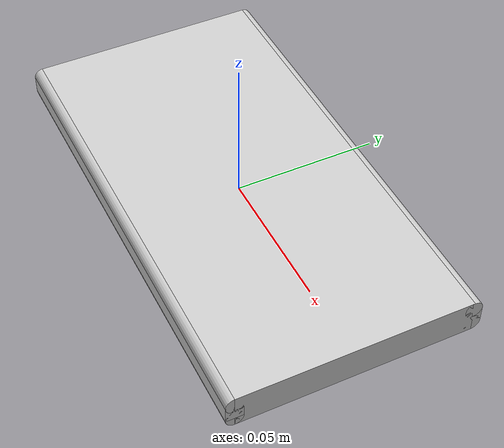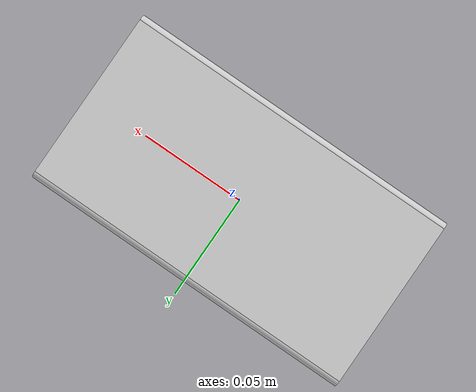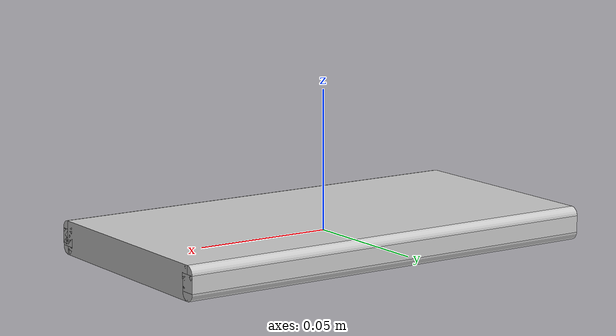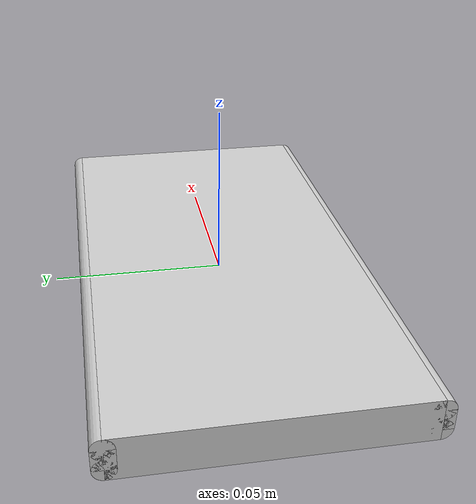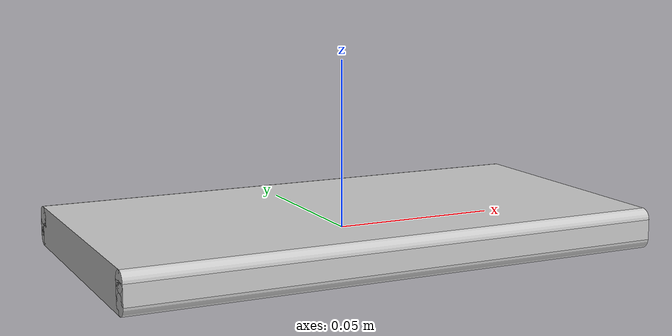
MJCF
<mujoco>
  <worldbody>
    <body name="phone" pos="0 0 0">
      <geom name="body" type="box" size="0.08 0.04 0.006" pos="0 0 0" rgba="0.8 0.8 0.8 1"/>

      <geom name="bevel1" type="cylinder" size="0.003 0.08" pos="0 0.04 0.003" quat="1 0 1 0" rgba="0.8 0.8 0.8 1"/>
      <geom name="bevel2" type="cylinder" size="0.003 0.08" pos="0 -0.04 0.003" quat="1 0 1 0" rgba="0.8 0.8 0.8 1"/>
      <geom name="bevel3" type="cylinder" size="0.003 0.08" pos="0 0.04 -0.003" quat="1 0 1 0" rgba="0.8 0.8 0.8 1"/>
      <geom name="bevel4" type="cylinder" size="0.003 0.08" pos="0 -0.04 -0.003" quat="1 0 1 0" rgba="0.8 0.8 0.8 1"/>

      <geom name="sidebar1" type="box" size="0.08 0.003 0.003" pos="0 0.04 0" rgba="0.8 0.8 0.8 1"/>
      <geom name="sidebar2" type="box" size="0.08 0.003 0.003" pos="0 -0.04 0" rgba="0.8 0.8 0.8 1"/>
    </body>
  </worldbody>
</mujoco>
